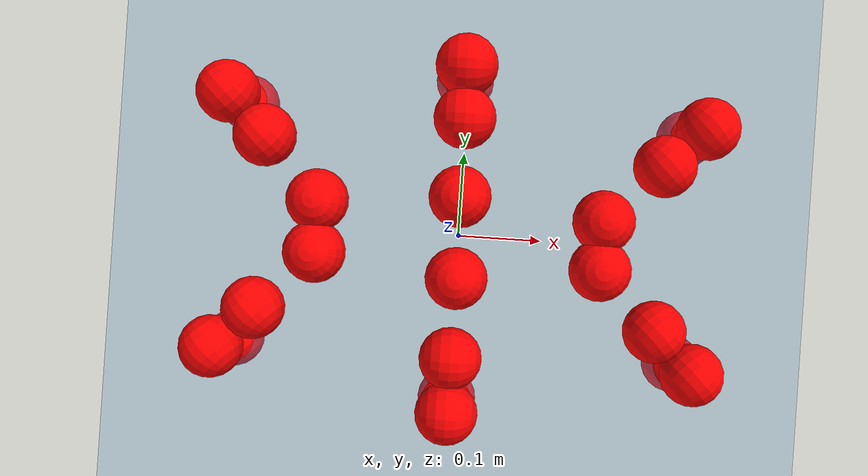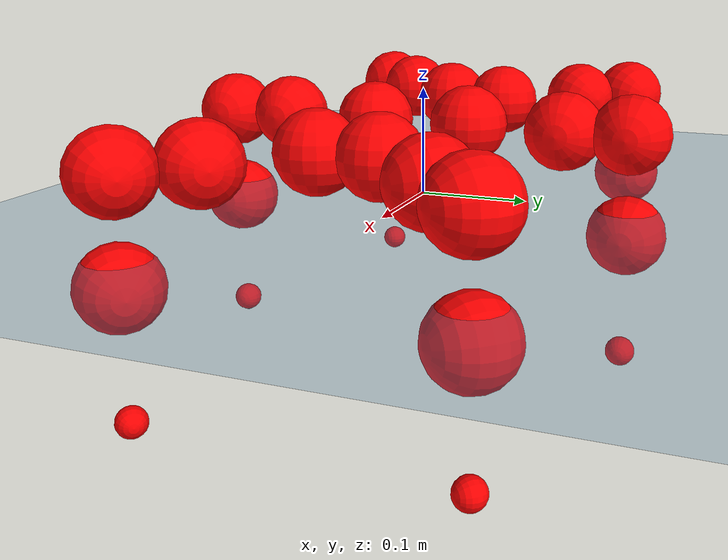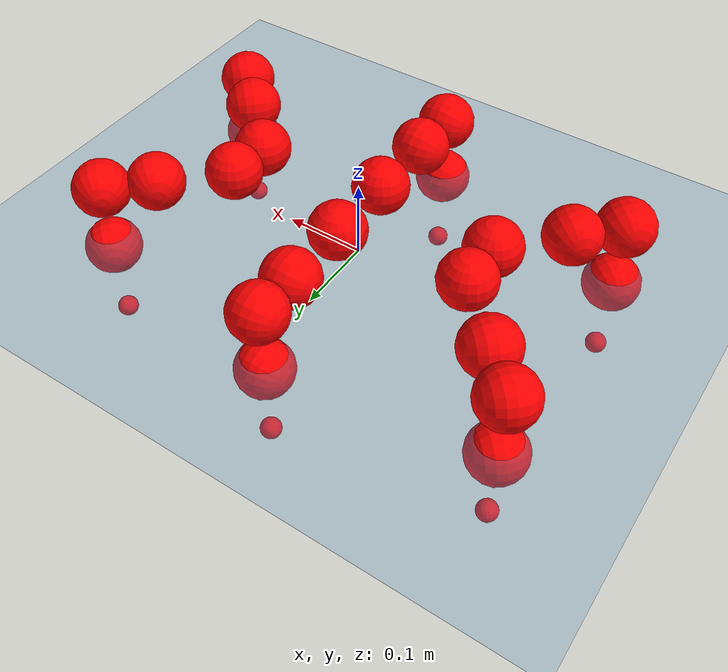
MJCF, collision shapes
<mujoco model="Golem">
  <compiler angle="radian" assetdir="assets" balanceinertia="true" inertiafromgeom="false"/>

  <option timestep="0.005" density="1.2" viscosity="2e-05"/>

  <size nkey="1"/>

  <visual>
    <quality shadowsize="8192"/>
    <map shadowclip="0.5"/>
  </visual>

  <default>
    <default class="/">
      <joint armature="0.01" damping="0.01" frictionloss="0.01"/>
      <geom contype="0" conaffinity="0" group="1" solref="-1000 -80"/>
      <site size="0.01 0.005 0.005" group="5"/>
      <general forcelimited="true" biastype="affine" gainprm="25" biasprm="0 -25 -0.5"/>
      <default class="visual">
        <geom type="mesh" group="2"/>
      </default>
      <default class="collision">
        <geom group="3"/>
      </default>
      <default class="foot">
        <geom size="0.01 0 0" condim="6" group="4" priority="1" solimp="0.015 1 0.01"/>
      </default>
      <default class="reward_collision_sphere">
        <geom group="5" rgba="1 0 0 1"/>
      </default>
    </default>
  </default>

  <asset>
    <texture type="skybox" colorspace="auto" name="//unnamed_texture_0" builtin="gradient" rgb1="0.95 0.95 0.95" rgb2="0.95 0.95 0.95" width="100" height="600"/>
    <texture type="2d" colorspace="auto" name="texplane" builtin="checker" rgb1="0.345 0.575 0.748" rgb2="0.345 0.575 0.748" markrgb="1 1 1" width="512" height="512"/>
    <material name="MatPlane" class="/" texture="texplane" texuniform="true" texrepeat="2 2" specular="0.9"/>
    <mesh name="body" class="/" file="body.stl" scale="0.001 0.001 0.001"/>
    <mesh name="coxa" class="/" file="coxa.stl" scale="0.001 0.001 0.001"/>
    <mesh name="femur" class="/" file="femur.stl" scale="0.001 0.001 0.001"/>
    <mesh name="tibia" class="/" file="tibia.stl" scale="0.001 0.001 0.001"/>
    <mesh name="tarsus" class="/" file="tarsus.stl" scale="0.001 0.001 0.001"/>
  </asset>

  <worldbody>
    <geom name="floor" class="/" size="100 100 0.125" type="plane" group="0" material="MatPlane"/>
    <light name="toplight_shadow" class="/" pos="0 0 5" dir="0.0990148 0.0990148 -0.990148" type="directional" ambient="0.04 0.04 0.04" diffuse="0.55 0.55 0.55" specular="0.12 0.12 0.12"/>
    <light name="toplight_fill" class="/" pos="0 0 5" dir="0.0990148 0.0990148 -0.990148" type="directional" castshadow="false" ambient="0.04 0.04 0.04" diffuse="0.3 0.3 0.3" specular="0.08 0.08 0.08"/>
    <body name="trunk" pos="1.32402e-06 -0.000503436 0.000819695" quat="1 9.17728e-05 5.97546e-05 -4.60481e-05">
      <inertial pos="-0.000331624 0.000313005 -0.00381441" quat="0.999999 0.000157509 0.000354449 -0.001006" mass="2.66188" diaginertia="0.0123366 0.000723874 0.0128514"/>
      <joint name="//unnamed_joint_0" type="free"/>
      <geom name="//unnamed_geom_1" class="/" pos="0 0 0.0672916" quat="1 0 0 0" type="mesh" rgba="0.9 0.9 0.9 1" mesh="body"/>
      <site name="imu" class="/" pos="0.134571 -0.000471021 0.110413" size="0.00894116"/>
      <camera name="track" class="/" pos="0 -1.17778 0" quat="0.707107 0.707107 0 0" mode="trackcom"/>
      <camera name="ego_camera" class="/" pos="0.135463 0 0.105143" quat="-0.5 -0.5 0.5 0.5"/>
      <body name="coxa_RR" pos="-0.18426 -0.0502538 0.069168" quat="0.38237 -0.000429267 -0.000249053 -0.924009">
        <inertial pos="-0.000427767 -0.000231732 0.00182483" quat="0.999993 0.000209501 0.00342366 0.0014344" mass="0.142901" diaginertia="0.0122615 0.000710081 0.0130444"/>
        <joint name="coxa_joint_RR" class="/" pos="0 0 0" axis="0.00199412 0.00196524 -0.999996" range="-3.15237 3.14124" armature="0.00914258" damping="0.00624206" frictionloss="0.00872553"/>
        <geom name="//unnamed_geom_2" class="/" type="mesh" rgba="0.2 0.2 0.2 1" mesh="coxa"/>
        <geom name="//unnamed_geom_3" class="reward_collision_sphere" size="0.0357647" pos="-0.0312608 0 0"/>
        <body name="femur_RR" pos="0.0628477 0.00199653 -0.000879715" quat="0.500142 -0.499581 0.500164 0.500113">
          <inertial pos="0.00012036 0.000734178 -0.000913588" quat="0.999991 -0.000269712 0.00370408 0.00211295" mass="0.142316" diaginertia="0.0121169 0.000713909 0.0128023"/>
          <joint name="femur_joint_RR" class="/" pos="0 0 0" axis="-2.27053e-05 -0.000164282 -1" range="-3.1431 3.14292" armature="0.00889419" damping="0.00174976" frictionloss="0.0089258"/>
          <geom name="//unnamed_geom_4" class="/" type="mesh" rgba="0.9 0.9 0.9 1" mesh="femur"/>
          <geom name="//unnamed_geom_5" class="reward_collision_sphere" size="0.0357647"/>
          <body name="tibia_RR" pos="0.000797568 -0.0647987 0.00135055" quat="1.66987e-05 1 4.39706e-05 1.1557e-05">
            <inertial pos="-0.000227389 0.000798552 0.000407249" quat="1 3.75433e-05 0.000257504 1.50739e-05" mass="0.144501" diaginertia="0.0124261 0.000713499 0.012956"/>
            <joint name="tibia_joint_RR" class="/" pos="0 0 0" axis="-0.00311565 -0.000231099 0.999995" range="-3.12724 3.14738" armature="0.00939141" damping="0" frictionloss="0.00951224"/>
            <geom name="//unnamed_geom_6" class="/" type="mesh" rgba="0.2 0.2 0.2 1" mesh="tibia"/>
            <geom name="//unnamed_geom_7" class="reward_collision_sphere" size="0.0357647"/>
            <body name="tarsus_RR" pos="0.0907893 -0.000436336 -0.00157518" quat="1 0.000354867 9.90684e-05 0.000152326">
              <inertial pos="0.0611569 5.62726e-05 -0.000755717" quat="0.501224 0.496519 0.502488 0.49975" mass="0.142627" diaginertia="0.0123271 0.000705586 0.0130132"/>
              <joint name="tarsus_joint_RR" class="/" pos="0 0 0" axis="0.000144156 0.00236112 0.999997" stiffness="0.00030393" range="-3.12044 3.13855" armature="0.00895544" damping="0.00373601" frictionloss="0.00910141"/>
              <geom name="//unnamed_geom_8" class="/" type="mesh" rgba="0.9 0.9 0.9 1" mesh="tarsus"/>
              <geom name="foot_1" class="foot" size="0.00886293" pos="0.116707 0 0" quat="0 -0.707107 0 0.707107"/>
              <geom name="//unnamed_geom_10" class="reward_collision_sphere" size="0.0357647"/>
              <geom name="//unnamed_geom_11" class="reward_collision_sphere" size="0.0134117" pos="0.112018 0 0"/>
              <site name="foot_1" class="foot" pos="0.116707 0 0" quat="0 -0.707107 0 0.707107" size="0.00894116"/>
            </body>
          </body>
        </body>
      </body>
      <body name="coxa_RM" pos="0.000386578 -0.0794096 0.0677553" quat="0.707168 -0.000298683 -0.000126361 -0.707045">
        <inertial pos="0.000363909 6.95135e-05 0.000360732" quat="0.999987 -0.00504221 0.000295019 0.00115663" mass="0.146532" diaginertia="0.0124107 0.000723855 0.0129552"/>
        <joint name="coxa_joint_RM" class="/" pos="0 0 0" axis="0.000539814 0.00403072 -0.999992" range="-3.13665 3.15707" armature="0.00888437" damping="0.0115866" frictionloss="0.0085866"/>
        <geom name="//unnamed_geom_12" class="/" type="mesh" rgba="0.2 0.2 0.2 1" mesh="coxa"/>
        <geom name="//unnamed_geom_13" class="reward_collision_sphere" size="0.0357647" pos="-0.0312608 0 0"/>
        <body name="femur_RM" pos="0.0595791 -0.00074191 0.000862501" quat="0.500116 -0.500082 0.499958 0.499844">
          <inertial pos="4.09263e-05 -0.00089298 0.000229757" quat="0.999997 -0.00145325 -0.00170088 -0.0011191" mass="0.141187" diaginertia="0.0122733 0.000709535 0.0129828"/>
          <joint name="femur_joint_RM" class="/" pos="0 0 0" axis="-0.000605287 0.000337234 -1" range="-3.14387 3.12085" armature="0.0086161" damping="0.00514785" frictionloss="0.00905576"/>
          <geom name="//unnamed_geom_14" class="/" type="mesh" rgba="0.9 0.9 0.9 1" mesh="femur"/>
          <geom name="//unnamed_geom_15" class="reward_collision_sphere" size="0.0357647"/>
          <body name="tibia_RM" pos="0.000214264 -0.0623505 -0.000622424" quat="0.000104899 1 0.000165997 0.000171898">
            <inertial pos="-0.000117448 -0.000981833 -0.000336792" quat="0.999997 -0.00188516 -0.000494687 -0.0014208" mass="0.14402" diaginertia="0.0123324 0.000707263 0.0130033"/>
            <joint name="tibia_joint_RM" class="/" pos="0 0 0" axis="0.00181887 -0.00129501 0.999998" range="-3.15269 3.12435" armature="0.00863624" damping="0.0043521" frictionloss="0.00918423"/>
            <geom name="//unnamed_geom_16" class="/" type="mesh" rgba="0.2 0.2 0.2 1" mesh="tibia"/>
            <geom name="//unnamed_geom_17" class="reward_collision_sphere" size="0.0357647"/>
            <body name="tarsus_RM" pos="0.0891931 -0.000939741 0.00116394" quat="1 -0.000200439 -0.00013659 -0.000247153">
              <inertial pos="0.0627401 0.000722748 0.000447378" quat="0.499944 0.499948 0.499997 0.500111" mass="0.143063" diaginertia="0.0124033 0.000712648 0.012955"/>
              <joint name="tarsus_joint_RM" class="/" pos="0 0 0" axis="0.00150633 0.00130405 0.999998" range="-3.14881 3.12917" armature="0.0093081" damping="0.0027388" frictionloss="0.00909905"/>
              <geom name="//unnamed_geom_18" class="/" type="mesh" rgba="0.9 0.9 0.9 1" mesh="tarsus"/>
              <geom name="foot_2" class="foot" size="0.00931666" pos="0.116707 0 0" quat="0 -0.707107 0 0.707107"/>
              <geom name="//unnamed_geom_20" class="reward_collision_sphere" size="0.0357647"/>
              <geom name="//unnamed_geom_21" class="reward_collision_sphere" size="0.0134117" pos="0.112018 0 0"/>
              <site name="foot_2" class="foot" pos="0.116707 0 0" quat="0 -0.707107 0 0.707107" size="0.00894116"/>
            </body>
          </body>
        </body>
      </body>
      <body name="coxa_RF" pos="0.184682 -0.0502477 0.0673683" quat="0.923907 -8.41442e-05 0.000118084 -0.382618">
        <inertial pos="-0.000498256 -0.000299873 0.000550176" quat="0.999991 -0.00297706 -0.00114761 -0.00293848" mass="0.143714" diaginertia="0.0124813 0.000723568 0.0129947"/>
        <joint name="coxa_joint_RF" class="/" pos="0 0 0" axis="-0.00159689 -0.00190277 -0.999997" range="-3.13984 3.15519" armature="0.00872661" damping="0.0110474" frictionloss="0.00908701"/>
        <geom name="//unnamed_geom_22" class="/" type="mesh" rgba="0.2 0.2 0.2 1" mesh="coxa"/>
        <geom name="//unnamed_geom_23" class="reward_collision_sphere" size="0.0357647" pos="-0.0312608 0 0"/>
        <body name="femur_RF" pos="0.062135 0.000430269 -0.000973258" quat="0.49999 -0.49998 0.500039 0.499992">
          <inertial pos="0.000540827 -0.000209115 -0.000124333" quat="0.999989 -0.00154152 0.00195182 0.00393814" mass="0.143567" diaginertia="0.0124168 0.000713202 0.0129961"/>
          <joint name="femur_joint_RF" class="/" pos="0 0 0" axis="-0.002412 0.00108605 -0.999997" range="-3.15557 3.13501" armature="0.00898314" damping="0.005339" frictionloss="0.00907606"/>
          <geom name="//unnamed_geom_24" class="/" type="mesh" rgba="0.9 0.9 0.9 1" mesh="femur"/>
          <geom name="//unnamed_geom_25" class="reward_collision_sphere" size="0.0357647"/>
          <body name="tibia_RF" pos="0.000865451 -0.0649251 -0.00037754" quat="0.000107322 1 -5.57737e-05 -0.000395306">
            <inertial pos="0.000134371 -0.000194348 0.00015708" quat="0.999999 0.000170684 0.00107454 0.000706989" mass="0.139427" diaginertia="0.0121604 0.00069346 0.0127951"/>
            <joint name="tibia_joint_RF" class="/" pos="0 0 0" axis="0.000386678 0.000256586 1" range="-3.12125 3.1324" armature="0.00878471" damping="0" frictionloss="0.00934719"/>
            <geom name="//unnamed_geom_26" class="/" type="mesh" rgba="0.2 0.2 0.2 1" mesh="tibia"/>
            <geom name="//unnamed_geom_27" class="reward_collision_sphere" size="0.0357647"/>
            <body name="tarsus_RF" pos="0.0901559 0.000657443 -0.000146515" quat="1 4.86814e-06 -7.60185e-08 4.01563e-06">
              <inertial pos="0.0619679 0.000636246 -0.000191729" quat="0.498563 0.501218 0.500739 0.499475" mass="0.143994" diaginertia="0.0125456 0.000716701 0.0130637"/>
              <joint name="tarsus_joint_RF" class="/" pos="0 0 0" axis="-0.00276559 -0.00796919 0.999964" range="-3.14816 3.12919" armature="0.00886317" damping="0" frictionloss="0.00852585"/>
              <geom name="//unnamed_geom_28" class="/" type="mesh" rgba="0.9 0.9 0.9 1" mesh="tarsus"/>
              <geom name="foot_3" class="foot" size="0.00872841" pos="0.116707 0 0" quat="0 -0.707107 0 0.707107"/>
              <geom name="//unnamed_geom_30" class="reward_collision_sphere" size="0.0357647"/>
              <geom name="//unnamed_geom_31" class="reward_collision_sphere" size="0.0134117" pos="0.112018 0 0"/>
              <site name="foot_3" class="foot" pos="0.116707 0 0" quat="0 -0.707107 0 0.707107" size="0.00894116"/>
            </body>
          </body>
        </body>
      </body>
      <body name="coxa_LR" pos="-0.184645 0.0526001 0.0678746" quat="0.382597 -6.17306e-05 -1.91186e-05 0.923915">
        <inertial pos="0.00117483 -0.000440066 0.000527979" quat="0.999997 0.00198937 -0.00122842 0.000158454" mass="0.144326" diaginertia="0.0123862 0.000719389 0.0129242"/>
        <joint name="coxa_joint_LR" class="/" pos="0 0 0" axis="0.00154214 0.000778862 -0.999999" range="-3.12247 3.14613" armature="0.00888707" damping="0.00864649" frictionloss="0.00866737"/>
        <geom name="//unnamed_geom_32" class="/" type="mesh" rgba="0.2 0.2 0.2 1" mesh="coxa"/>
        <geom name="//unnamed_geom_33" class="reward_collision_sphere" size="0.0357647" pos="-0.0312608 0 0"/>
        <body name="femur_LR" pos="0.0638026 -0.00335712 -0.00149856" quat="0.499964 -0.499999 0.500011 0.500026">
          <inertial pos="3.56056e-05 -0.000838642 -0.000541269" quat="0.999994 -0.0028409 -0.0011078 0.00183288" mass="0.143893" diaginertia="0.0121663 0.000706651 0.0129305"/>
          <joint name="femur_joint_LR" class="/" pos="0 0 0" axis="-0.00678342 -0.00462239 0.999966" range="-3.12199 3.12786" armature="0.00947711" damping="0.00589688" frictionloss="0.00889968"/>
          <geom name="//unnamed_geom_34" class="/" type="mesh" rgba="0.9 0.9 0.9 1" mesh="femur"/>
          <geom name="//unnamed_geom_35" class="reward_collision_sphere" size="0.0357647"/>
          <body name="tibia_LR" pos="0.000481627 -0.0647392 -0.00160799" quat="4.53185e-05 1 -2.54526e-05 0.000130142">
            <inertial pos="0.000725579 2.93059e-05 -0.000180107" quat="0.999994 0.00292612 0.000600615 -0.0017713" mass="0.144121" diaginertia="0.0124156 0.0007041 0.0130183"/>
            <joint name="tibia_joint_LR" class="/" pos="0 0 0" axis="0.00229291 -0.000727623 -0.999997" range="-3.12513 3.12762" armature="0.00907884" damping="0.00687874" frictionloss="0.00891845"/>
            <geom name="//unnamed_geom_36" class="/" type="mesh" rgba="0.2 0.2 0.2 1" mesh="tibia"/>
            <geom name="//unnamed_geom_37" class="reward_collision_sphere" size="0.0357647"/>
            <body name="tarsus_LR" pos="0.0913534 0.000837353 0.00150511" quat="1 -8.48034e-05 -2.05904e-05 1.51973e-05">
              <inertial pos="0.0633281 0.000381166 0.00071149" quat="0.499838 0.500257 0.500115 0.499789" mass="0.14269" diaginertia="0.0123293 0.000721943 0.0127473"/>
              <joint name="tarsus_joint_LR" class="/" pos="0 0 0" axis="4.12065e-06 5.37852e-06 -1" range="-3.14547 3.12043" armature="0.00896356" damping="0" frictionloss="0.00934744"/>
              <geom name="//unnamed_geom_38" class="/" type="mesh" rgba="0.9 0.9 0.9 1" mesh="tarsus"/>
              <geom name="foot_4" class="foot" size="0.00854267" pos="0.116707 0 0" quat="0.707107 0 -0.707107 0"/>
              <geom name="//unnamed_geom_40" class="reward_collision_sphere" size="0.0357647"/>
              <geom name="//unnamed_geom_41" class="reward_collision_sphere" size="0.0134117" pos="0.112018 0 0"/>
              <site name="foot_4" class="foot" pos="0.116707 0 0" quat="0.707107 0 -0.707107 0" size="0.00894116"/>
            </body>
          </body>
        </body>
      </body>
      <body name="coxa_LM" pos="-0.00126608 0.0760803 0.0679724" quat="0.707085 3.26562e-05 1.14661e-06 0.707129">
        <inertial pos="0.000311735 -1.36477e-05 0.000228997" quat="0.999997 -0.000974856 -0.0013519 -0.00189151" mass="0.144213" diaginertia="0.0121676 0.000707074 0.0128828"/>
        <joint name="coxa_joint_LM" class="/" pos="0 0 0" axis="0.00172428 -0.00503555 -0.999986" range="-3.14822 3.14436" armature="0.00881548" damping="0.00650917" frictionloss="0.00891776"/>
        <geom name="//unnamed_geom_42" class="/" type="mesh" rgba="0.2 0.2 0.2 1" mesh="coxa"/>
        <geom name="//unnamed_geom_43" class="reward_collision_sphere" size="0.0357647" pos="-0.0312608 0 0"/>
        <body name="femur_LM" pos="0.0583984 0.000357077 -0.00115094" quat="0.500072 -0.499995 0.499963 0.49997">
          <inertial pos="0.000465473 -2.554e-05 -0.00119284" quat="0.999997 0.00060182 -0.00161274 0.00183617" mass="0.145373" diaginertia="0.0124173 0.000718917 0.0129388"/>
          <joint name="femur_joint_LM" class="/" pos="0 0 0" axis="-0.00584519 -0.00422772 0.999974" range="-3.13462 3.11926" armature="0.00931408" damping="0.00327206" frictionloss="0.00897811"/>
          <geom name="//unnamed_geom_44" class="/" type="mesh" rgba="0.9 0.9 0.9 1" mesh="femur"/>
          <geom name="//unnamed_geom_45" class="reward_collision_sphere" size="0.0357647"/>
          <body name="tibia_LM" pos="-0.000325163 -0.0600597 0.00155409" quat="0.000135627 1 -0.000429601 0.00016234">
            <inertial pos="-0.000948715 -0.0011622 -0.000215895" quat="0.999997 0.000413736 -0.0017561 -0.00178656" mass="0.139021" diaginertia="0.0120861 0.000696028 0.0126439"/>
            <joint name="tibia_joint_LM" class="/" pos="0 0 0" axis="-0.000316999 -0.000339314 -1" range="-3.14369 3.158" armature="0.00959774" damping="0" frictionloss="0.0088339"/>
            <geom name="//unnamed_geom_46" class="/" type="mesh" rgba="0.2 0.2 0.2 1" mesh="tibia"/>
            <geom name="//unnamed_geom_47" class="reward_collision_sphere" size="0.0357647"/>
            <body name="tarsus_LM" pos="0.091815 -0.000562681 -0.00133471" quat="1 -4.32719e-05 -0.000170695 -8.70362e-06">
              <inertial pos="0.0641647 -0.000306711 -0.000108909" quat="0.501118 0.500528 0.496154 0.502178" mass="0.140825" diaginertia="0.0120683 0.000685052 0.0127136"/>
              <joint name="tarsus_joint_LM" class="/" pos="0 0 0" axis="-0.00193608 4.73657e-05 -0.999998" range="-3.13601 3.13719" armature="0.00874191" damping="0.00670872" frictionloss="0.00937355"/>
              <geom name="//unnamed_geom_48" class="/" type="mesh" rgba="0.9 0.9 0.9 1" mesh="tarsus"/>
              <geom name="foot_5" class="foot" size="0.00873462" pos="0.116707 0 0" quat="0.707107 0 -0.707107 0"/>
              <geom name="//unnamed_geom_50" class="reward_collision_sphere" size="0.0357647"/>
              <geom name="//unnamed_geom_51" class="reward_collision_sphere" size="0.0134117" pos="0.112018 0 0"/>
              <site name="foot_5" class="foot" pos="0.116707 0 0" quat="0.707107 0 -0.707107 0" size="0.00894116"/>
            </body>
          </body>
        </body>
      </body>
      <body name="coxa_LF" pos="0.185554 0.0494457 0.0677768" quat="0.923893 -4.16097e-05 -0.000205621 0.382651">
        <inertial pos="-0.000342816 -0.00108904 0.000708045" quat="1 3.7273e-05 -0.000222594 -0.000123918" mass="0.143595" diaginertia="0.012335 0.000700825 0.0128321"/>
        <joint name="coxa_joint_LF" class="/" pos="0 0 0" axis="-0.00034812 -0.000144859 -1" range="-3.12024 3.13899" armature="0.00862013" damping="0" frictionloss="0.00915068"/>
        <geom name="//unnamed_geom_52" class="/" type="mesh" rgba="0.2 0.2 0.2 1" mesh="coxa"/>
        <geom name="//unnamed_geom_53" class="reward_collision_sphere" size="0.0357647" pos="-0.0312608 0 0"/>
        <body name="femur_LF" pos="0.062414 0.000989387 -0.00043817" quat="0.500026 -0.500019 0.500145 0.49981">
          <inertial pos="-0.000190524 0.000831167 -8.56897e-06" quat="1 -7.18541e-07 7.19027e-05 4.54961e-05" mass="0.142431" diaginertia="0.0121431 0.000707142 0.0128253"/>
          <joint name="femur_joint_LF" class="/" pos="0 0 0" axis="0.00315007 0.000354512 0.999995" range="-3.12204 3.132" armature="0.00913139" damping="0" frictionloss="0.00898006"/>
          <geom name="//unnamed_geom_54" class="/" type="mesh" rgba="0.9 0.9 0.9 1" mesh="femur"/>
          <geom name="//unnamed_geom_55" class="reward_collision_sphere" size="0.0357647"/>
          <body name="tibia_LF" pos="0.000397175 -0.0648571 -0.000348867" quat="0.000153086 1 -0.00050151 0.000135189">
            <inertial pos="-0.000906303 0.00052251 0.000875847" quat="1 0.000656581 0.000382651 -3.9213e-05" mass="0.140945" diaginertia="0.0123552 0.000708458 0.0129528"/>
            <joint name="tibia_joint_LF" class="/" pos="0 0 0" axis="0.00170653 0.0045258 -0.999988" range="-3.14259 3.1456" armature="0.00925304" damping="0" frictionloss="0.00897533"/>
            <geom name="//unnamed_geom_56" class="/" type="mesh" rgba="0.2 0.2 0.2 1" mesh="tibia"/>
            <geom name="//unnamed_geom_57" class="reward_collision_sphere" size="0.0357647"/>
            <body name="tarsus_LF" pos="0.0936078 0.00109673 -0.000249979" quat="1 -7.14246e-05 -7.57192e-05 2.58888e-05">
              <inertial pos="0.0629872 0.000417721 -6.05296e-05" quat="0.497505 0.505172 0.496667 0.500611" mass="0.144443" diaginertia="0.0122852 0.000710807 0.0128422"/>
              <joint name="tarsus_joint_LF" class="/" pos="0 0 0" axis="-0.00310194 -0.0050224 -0.999983" stiffness="0.0306109" range="-3.15443 3.14971" armature="0.00890457" damping="0.0264951" frictionloss="0.00931754"/>
              <geom name="//unnamed_geom_58" class="/" type="mesh" rgba="0.9 0.9 0.9 1" mesh="tarsus"/>
              <geom name="foot_6" class="foot" size="0.00912636" pos="0.116707 0 0" quat="0.707107 0 -0.707107 0"/>
              <geom name="//unnamed_geom_60" class="reward_collision_sphere" size="0.0357647"/>
              <geom name="//unnamed_geom_61" class="reward_collision_sphere" size="0.0134117" pos="0.112018 0 0"/>
              <site name="foot_6" class="foot" pos="0.116707 0 0" quat="0.707107 0 -0.707107 0" size="0.00894116"/>
            </body>
          </body>
        </body>
      </body>
    </body>
  </worldbody>

  <contact>
    <pair class="/" geom1="floor" geom2="foot_1" name="//unnamed_contact_0"/>
    <pair class="/" geom1="floor" geom2="foot_2" name="//unnamed_contact_1"/>
    <pair class="/" geom1="floor" geom2="foot_3" name="//unnamed_contact_2"/>
    <pair class="/" geom1="floor" geom2="foot_4" name="//unnamed_contact_3"/>
    <pair class="/" geom1="floor" geom2="foot_5" name="//unnamed_contact_4"/>
    <pair class="/" geom1="floor" geom2="foot_6" name="//unnamed_contact_5"/>
  </contact>

  <actuator>
    <general name="coxa_joint_RR" class="/" joint="coxa_joint_RR" forcerange="-6.50168 6.50168" gainprm="21.7138" biasprm="0 -21.7138 -0.465882"/>
    <general name="femur_joint_RR" class="/" joint="femur_joint_RR" forcerange="-6.5547 6.5547" gainprm="21.7138" biasprm="0 -21.7138 -0.465882"/>
    <general name="tibia_joint_RR" class="/" joint="tibia_joint_RR" forcerange="-6.51835 6.51835" gainprm="21.7138" biasprm="0 -21.7138 -0.465882"/>
    <general name="tarsus_joint_RR" class="/" joint="tarsus_joint_RR" forcerange="-6.46988 6.46988" gainprm="21.7138" biasprm="0 -21.7138 -0.465882"/>
    <general name="coxa_joint_RM" class="/" joint="coxa_joint_RM" forcerange="-6.67129 6.67129" gainprm="21.7138" biasprm="0 -21.7138 -0.465882"/>
    <general name="femur_joint_RM" class="/" joint="femur_joint_RM" forcerange="-6.48031 6.48031" gainprm="21.7138" biasprm="0 -21.7138 -0.465882"/>
    <general name="tibia_joint_RM" class="/" joint="tibia_joint_RM" forcerange="-6.51835 6.51835" gainprm="21.7138" biasprm="0 -21.7138 -0.465882"/>
    <general name="tarsus_joint_RM" class="/" joint="tarsus_joint_RM" forcerange="-6.35113 6.35113" gainprm="21.7138" biasprm="0 -21.7138 -0.465882"/>
    <general name="coxa_joint_RF" class="/" joint="coxa_joint_RF" forcerange="-6.58975 6.58975" gainprm="21.7138" biasprm="0 -21.7138 -0.465882"/>
    <general name="femur_joint_RF" class="/" joint="femur_joint_RF" forcerange="-6.6334 6.6334" gainprm="21.7138" biasprm="0 -21.7138 -0.465882"/>
    <general name="tibia_joint_RF" class="/" joint="tibia_joint_RF" forcerange="-6.43199 6.43199" gainprm="21.7138" biasprm="0 -21.7138 -0.465882"/>
    <general name="tarsus_joint_RF" class="/" joint="tarsus_joint_RF" forcerange="-6.64978 6.64978" gainprm="21.7138" biasprm="0 -21.7138 -0.465882"/>
    <general name="coxa_joint_LR" class="/" joint="coxa_joint_LR" forcerange="-6.57905 6.57905" gainprm="21.7138" biasprm="0 -21.7138 -0.465882"/>
    <general name="femur_joint_LR" class="/" joint="femur_joint_LR" forcerange="-6.53262 6.53262" gainprm="21.7138" biasprm="0 -21.7138 -0.465882"/>
    <general name="tibia_joint_LR" class="/" joint="tibia_joint_LR" forcerange="-6.50561 6.50561" gainprm="21.7138" biasprm="0 -21.7138 -0.465882"/>
    <general name="tarsus_joint_LR" class="/" joint="tarsus_joint_LR" forcerange="-6.45414 6.45414" gainprm="21.7138" biasprm="0 -21.7138 -0.465882"/>
    <general name="coxa_joint_LM" class="/" joint="coxa_joint_LM" forcerange="-6.42372 6.42372" gainprm="21.7138" biasprm="0 -21.7138 -0.465882"/>
    <general name="femur_joint_LM" class="/" joint="femur_joint_LM" forcerange="-6.40678 6.40678" gainprm="21.7138" biasprm="0 -21.7138 -0.465882"/>
    <general name="tibia_joint_LM" class="/" joint="tibia_joint_LM" forcerange="-6.5381 6.5381" gainprm="21.7138" biasprm="0 -21.7138 -0.465882"/>
    <general name="tarsus_joint_LM" class="/" joint="tarsus_joint_LM" forcerange="-6.37055 6.37055" gainprm="21.7138" biasprm="0 -21.7138 -0.465882"/>
    <general name="coxa_joint_LF" class="/" joint="coxa_joint_LF" forcerange="-6.75399 6.75399" gainprm="21.7138" biasprm="0 -21.7138 -0.465882"/>
    <general name="femur_joint_LF" class="/" joint="femur_joint_LF" forcerange="-6.54241 6.54241" gainprm="21.7138" biasprm="0 -21.7138 -0.465882"/>
    <general name="tibia_joint_LF" class="/" joint="tibia_joint_LF" forcerange="-6.55909 6.55909" gainprm="21.7138" biasprm="0 -21.7138 -0.465882"/>
    <general name="tarsus_joint_LF" class="/" joint="tarsus_joint_LF" forcerange="-6.49051 6.49051" gainprm="21.7138" biasprm="0 -21.7138 -0.465882"/>
  </actuator>

  <sensor>
    <gyro site="imu" name="imu_angular_velocity"/>
    <velocimeter site="imu" name="imu_linear_velocity"/>
    <framelinvel objtype="site" objname="foot_1" name="foot_1_global_linear_velocity"/>
    <framelinvel objtype="site" objname="foot_2" name="foot_2_global_linear_velocity"/>
    <framelinvel objtype="site" objname="foot_3" name="foot_3_global_linear_velocity"/>
    <framelinvel objtype="site" objname="foot_4" name="foot_4_global_linear_velocity"/>
    <framelinvel objtype="site" objname="foot_5" name="foot_5_global_linear_velocity"/>
    <framelinvel objtype="site" objname="foot_6" name="foot_6_global_linear_velocity"/>
  </sensor>

  <keyframe>
    <key name="home" qpos="0 0 0.1457 1 0 0 0 0 0 0 0 0 0 0 0 0 0 0 0 0 0 0 0 0 0 0 0 0 0 0 0"/>
  </keyframe>
</mujoco>
